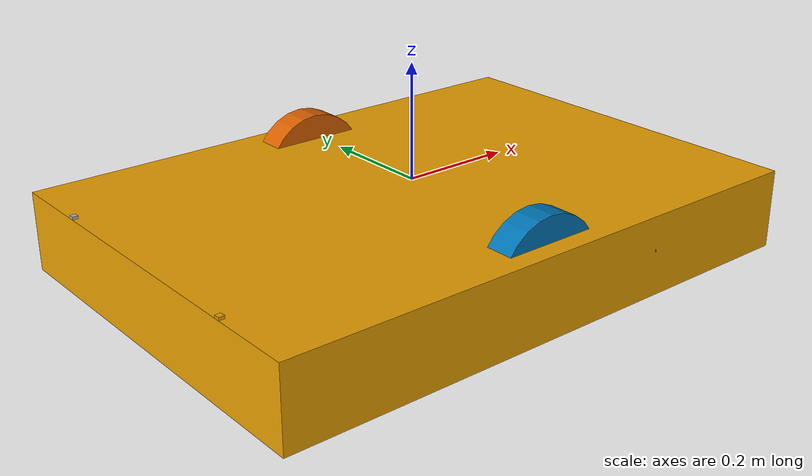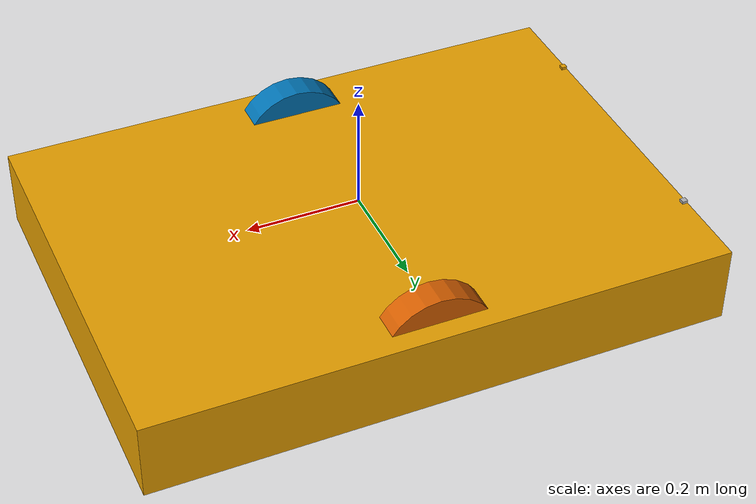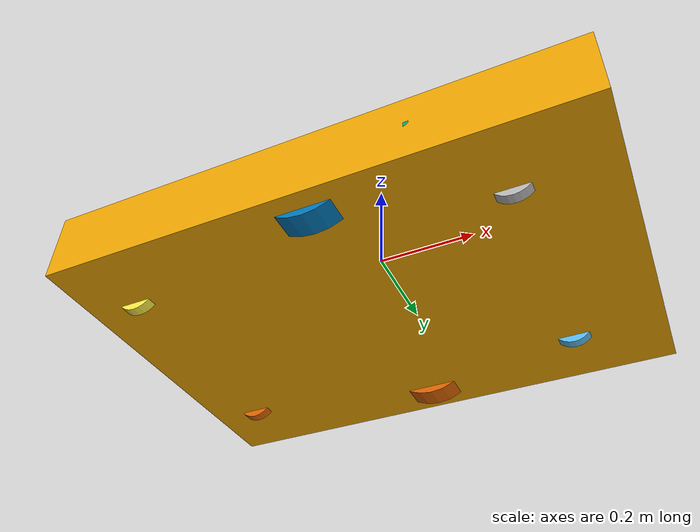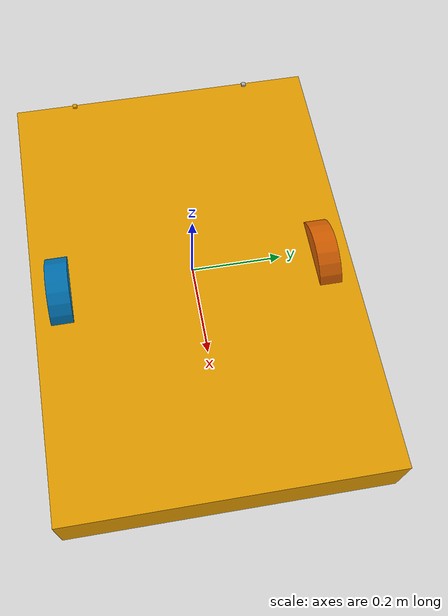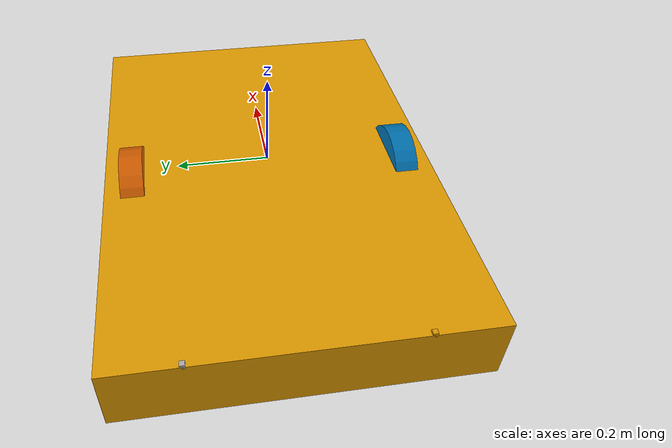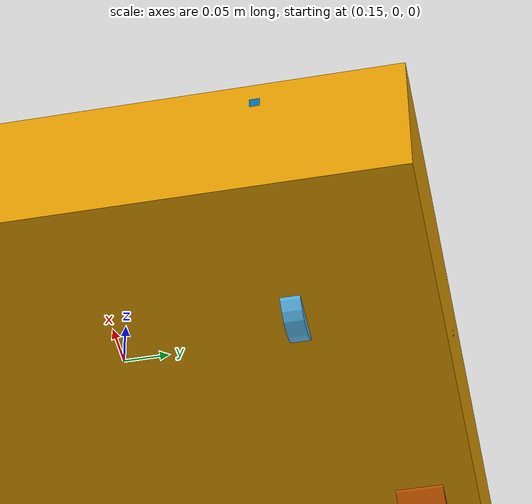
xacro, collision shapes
<?xml version="1.0"?>
<robot name="agvota" xmlns:xacro="http://ros.org/wiki/xacro">

	<xacro:arg name="robot_namespace" default="$(optenv ROBOT_NAMESPACE /)" />
	<xacro:property name="robot_namespace" value="$(arg robot_namespace)" />

	<xacro:include filename="$(find arena-simulation-setup)/robot/agvota/urdf/agv_base.urdf.xacro"/>
	<xacro:include filename="$(find arena-simulation-setup)/robot/agvota/urdf/inertia_tensors.urdf.xacro"/>
	<xacro:include filename="$(find arena-simulation-setup)/robot/agvota/urdf/agv_wheel.urdf.xacro"/>
	<xacro:include filename="$(find arena-simulation-setup)/robot/agvota/urdf/agv_plugin.urdf.xacro"/>
	<xacro:include filename="$(find arena-simulation-setup)/robot/agvota/urdf/agv_caster.urdf.xacro"/>
	<xacro:include filename="$(find arena-simulation-setup)/robot/agvota/urdf/agv_ir.urdf.xacro"/>

	<xacro:agv_base />
	<xacro:agv_ir base_link="base_link" link_name="ir1" xyz_ir="0.505 0.215 -0.03" rpy_ir="0 0 0" />
	<xacro:agv_ir base_link="base_link" link_name="ir2" xyz_ir="0.20 0.355 -0.068" rpy_ir="0 0 1.570796" />
	<xacro:agv_ir base_link="base_link" link_name="ir3" xyz_ir="-0.20 0.355 -0.068" rpy_ir="0 0 1.570796" />
	<xacro:agv_ir base_link="base_link" link_name="ir4" xyz_ir="-0.505 0.215 -0.005" rpy_ir="0 0 3.14159" />
	<xacro:agv_ir base_link="base_link" link_name="ir5" xyz_ir="-0.505 -0.215 -0.005" rpy_ir="0 0 3.14159" />
	<xacro:agv_ir base_link="base_link" link_name="ir6" xyz_ir="-0.20 -0.355 -0.068" rpy_ir="0 0 -1.570796" />
	<xacro:agv_ir base_link="base_link" link_name="ir7" xyz_ir="0.20 -0.355 -0.068" rpy_ir="0 0 -1.570796" />
	<xacro:agv_ir base_link="base_link" link_name="ir8" xyz_ir="0.503 -0.215 -0.03" rpy_ir="0 0 0" />
	<xacro:agv_wheel xyz_hub="0 -0.30 -0.06" rpy_hub="0 0 0" side="left"/>
	<xacro:agv_wheel xyz_hub="0 0.30 -0.06" rpy_hub="0 0 0" side="right"/>

	<xacro:agv_swivel xyz_caster="0.37 -0.22 -0.048" rpy_caster="0 0 0" side="front_right"/>
	<xacro:agv_swivel xyz_caster="0.37 0.22 -0.048" rpy_caster="0 0 0" side="front_left"/>
	<xacro:agv_swivel xyz_caster="-0.37 -0.22 -0.048" rpy_caster="0 0 0" side="back_right"/>
	<xacro:agv_swivel xyz_caster="-0.37 0.22 -0.048" rpy_caster="0 0 0" side="back_left"/>

	<!-- Motor plugin -->
	<xacro:agv_diff_drive />

	<!-- Joints plugin -->
	<xacro:agv_joints_state_publisher />

	<!-- IMU Plugin-->
	<xacro:agv_imu />

</robot>

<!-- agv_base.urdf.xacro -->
<robot xmlns:xacro="http://ros.org/wiki/xacro">
  <xacro:macro name="agv_base" >

    <link name='base_link'>
      <origin xyz="0 0 0" rpy=" 0 0 0"/>

      <visual>
        <origin xyz="0 0 -0.1625" rpy=" 0 0 0"/>
        <geometry>
          <mesh filename="package://arena-simulation-setup/robot/agvota/meshes/OTAv07_meshes/OTA-v0.7.stl" scale="0.001 0.001 0.001"/>
        </geometry>
      </visual>

      <collision>
        <origin xyz="0 0 -0.075" rpy=" 0 0 0"/>
        <geometry>
          <box size="1.02 0.72 0.14"/>
        </geometry>
      </collision>

      <xacro:box_inertial x="1.02605" y="0.728"  z="0.3" mass="1.0" />
    </link>

    <gazebo reference="base_link">
      <material value="Gazebo/Orange"/>
    </gazebo>

    <!-- Laser -->
    <link name="scan_link">

      <visual>
        <origin xyz="0 0 0" rpy="1.570796 0 -1.570796"/>
        <geometry>
          <mesh filename="package://arena-simulation-setup/robot/agvota/meshes/OTAv07_meshes/S30B-XXXXXX.stl" scale="0.001 0.001 0.001"/>
        </geometry>
      </visual>

    </link>

    <joint name="scan_joint" type="fixed">
      <origin xyz="0.42 0.0 0.01" rpy="0 0 0"/>
      <parent link="base_link"/>
      <child link="scan_link"/>
      <axis xyz="0 0 1"/>
    </joint>

    <gazebo reference="scan_link">
      <material value="Gazebo/DarkGray"/>
      <sensor type="ray" name="laser_scan">
      	<tf_prefix></tf_prefix>
        <pose>0 0 0 0 0 0</pose>
        <visualize>false</visualize>
        <update_rate>40</update_rate>
        <ray>
          <scan>
            <horizontal>
              <samples>720</samples>
              <resolution>1</resolution>
              <min_angle>-1.570796</min_angle>
              <max_angle>1.570796</max_angle>
            </horizontal>
          </scan>
          <range>
            <min>0.10</min>
            <max>30.0</max>
            <resolution>0.03</resolution>
          </range>

          <noise>
            <type>gaussian</type>
            <mean>0.0</mean>
            <stddev>0.01</stddev>
          </noise>
        </ray>

        <plugin name="laser_scan_plugin" filename="libgazebo_ros_laser.so">
            <topicName>scan</topicName>
            <frameName>scan_link</frameName>
            <tf_prefix>/</tf_prefix>
        </plugin>
      </sensor>
    </gazebo>

    <!-- Zed Camera -->

    <link name="zed_camera">
      <visual>
          <origin xyz="0 0 0" rpy="0 0 0"/>
          <geometry>
            <mesh filename="package://arena-simulation-setup/robot/agvota/meshes/OTAv07_meshes/zed.stl" />
          </geometry>
          <material name="black">
            <color rgba="1 1 1 1"/>
          </material>
      </visual>

    </link>

    <joint name="zed_camera_joint" type="fixed">
      <parent link="base_link"/>
      <child link="zed_camera"/>
      <origin xyz="0.49 0 0.175" rpy="0 0 0" />
    </joint>

    <gazebo reference="zed_camera">
      <sensor type="camera" name="camera">
        <update_rate>30.0</update_rate>
        <camera name="head">
          <horizontal_fov>1.3962634</horizontal_fov>
          <image>
            <width>640</width>
            <height>480</height>
            <format>R8G8B8</format>
          </image>
          <clip>
            <near>0.02</near>
            <far>300</far>
          </clip>
          <noise>
            <type>gaussian</type>
            <!-- Noise is sampled independently per pixel on each frame.
                That pixel's noise value is added to each of its color
                channels, which at that point lie in the range [0,1]. -->
            <mean>0.0</mean>
            <stddev>0.007</stddev>
          </noise>
        </camera>

        <plugin name="camera_controller" filename="libgazebo_ros_camera.so">
          <alwaysOn>true</alwaysOn>
          <updateRate>0.0</updateRate>
          <cameraName>camera</cameraName>
          <imageTopicName>image_raw</imageTopicName>
          <cameraInfoTopicName>camera_info</cameraInfoTopicName>
          <frameName>zed_camera</frameName>
          <hackBaseline>0.07</hackBaseline>
          <distortionK1>0.0</distortionK1>
          <distortionK2>0.0</distortionK2>
          <distortionK3>0.0</distortionK3>
          <distortionT1>0.0</distortionT1>
          <distortionT2>0.0</distortionT2>
        </plugin>

      </sensor>
    </gazebo>

    <!-- IMU Link -->
    <link name="imu_link"/>

    <joint name="imu_joint" type="fixed">
      <parent link="base_link"/>
      <child link="imu_link"/>
      <origin xyz="0.0 0 0.068" rpy="0 0 0"/>
    </joint>

  </xacro:macro>
</robot>

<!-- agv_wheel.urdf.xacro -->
<robot xmlns:xacro="http://ros.org/wiki/xacro">
  <xacro:macro name="agv_wheel" params="xyz_hub rpy_hub side">

    <link name='wheel_${side}_link'>
      <visual>
        <origin xyz="0 0 0" rpy=" 0 0 1.570796"/>
        <geometry>
          <mesh filename="package://arena-simulation-setup/robot/agvota/meshes/OTAv07_meshes/AnaTeker.stl" scale="0.001 0.001 0.001"/>
        </geometry>
      </visual>

      <collision>
        <origin xyz="0 0 0" rpy="0 1.570796 1.570796"/>
        <geometry>
          <cylinder radius="0.1" length="0.05"/>
        </geometry>
      </collision>

      <xacro:cylinder_inertial radius="0.15" length="0.02" mass="0.1"/>
    </link>

    <joint name="wheel_${side}_base" type="continuous">
      <origin xyz="${xyz_hub}" rpy="${rpy_hub}"/>
      <parent link="base_link"/>
      <child link="wheel_${side}_link"/>
      <axis xyz="0 1 0"/>
    </joint>

    <gazebo reference="wheel_${side}_link">
      <material value="Gazebo/Green"/>
    </gazebo>

  </xacro:macro>
 </robot>

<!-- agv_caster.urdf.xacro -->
<robot xmlns:xacro="http://ros.org/wiki/xacro">
  <property name="M_PI" value="3.1415926535897931" />
  <xacro:macro name="agv_swivel" params="xyz_caster rpy_caster side">

    <link name='caster_${side}_link'>
      <visual>
        <origin xyz="0 0 0" rpy=" 0 0 0"/>
        <geometry>
          <mesh filename="package://arena-simulation-setup/robot/agvota/meshes/OTAv07_meshes/SarhosTeker.stl" scale="0.001 0.001 0.001"/>
        </geometry>
      </visual>

      <collision>
        <origin xyz="0 0 0" rpy="0 0 0"/>
        <geometry>
          <cylinder radius="0.005" length="0.07"/>
        </geometry>
      </collision>

      <xacro:cylinder_inertial radius="0.005" length="0.07" mass="0.1" />
    </link>

    <joint name="caster_${side}_joint" type="continuous">
      <origin xyz="${xyz_caster}" rpy="${rpy_caster}"/>
      <axis xyz="0 0 1"/>
      <anchor xyz="0 0 0"/>
      <limit effort="0" velocity="0" k_velocity="0"/>
      <joint_properties damping="0.0" friction="0.0"/>
      <parent link="base_link"/>
      <child link="caster_${side}_link"/>
    </joint>

    <gazebo reference="caster_${side}_link">
      <material value="Gazebo/Gray"/>
    </gazebo>

    <link name='caster_wheel_${side}_link'>
      <collision>
        <origin xyz="0 0 0" rpy="0 1.570796 1.570796"/>
        <geometry>
          <cylinder radius="0.042" length="0.02"/>
        </geometry>
      </collision>

      <xacro:cylinder_inertial radius="0.042" length="0.02" mass="0.1" />
    </link>

    <joint name="caster_${side}_wheel_joint" type="continuous">
      <axis xyz="0 1 0"/>
      <origin xyz="-0.04 0 -0.07" rpy="0 0 0"/>
      <parent link="caster_${side}_link"/>
      <child link="caster_wheel_${side}_link"/>
    </joint>

  </xacro:macro>
</robot>

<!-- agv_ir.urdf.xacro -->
<robot xmlns:xacro="http://ros.org/wiki/xacro">
  <xacro:macro name="agv_ir" params="base_link link_name xyz_ir rpy_ir">

	<link name="${link_name}_link">
		<inertial>
			<origin xyz="0 0 0" rpy="0 0 0"/>
			<mass value="0.001"/>
			<inertia ixx="0.001666" ixy="0" ixz="0" iyy="0.001666" iyz="0" izz="0.001666"/>
		</inertial>

		<visual>
			<origin xyz="0 0 0" rpy="0 0 0"/>
			<geometry>
				<mesh filename="package://arena-simulation-setup/robot/agvota/meshes/OTAv07_meshes/FotoelektrikSensor.stl" scale="0.0015 0.0015 0.0015"/>
			</geometry>
		</visual>

		<collision>
			<origin xyz="0 0 0" rpy="0 0 0"/>
			<geometry>
				<box size="0.01 0.01 0.01" />
			</geometry>
		</collision>
	</link>

	<joint name="${link_name}_joint" type="fixed">
		<origin xyz="${xyz_ir}" rpy="${rpy_ir}"/>
		<parent link="${base_link}"/>
		<child link="${link_name}_link"/>
	</joint>

	<gazebo reference="${link_name}_link">
		<sensor type="ray" name="${link_name}">
			<pose>0 0 0 0 0 0</pose>
			<ray>
				<scan>
					<horizontal>
						<samples>320</samples>
						<resolution>1</resolution>
						<min_angle>-0.001</min_angle>
						<max_angle>0.001</max_angle>
					</horizontal>
				</scan>
				<range>
					<min>0.02</min>
					<max>5.0</max>
					<resolution>0.01</resolution>
				</range>
			</ray>

			<plugin name="gazebo_ros_range" filename="libgazebo_ros_range.so">
				<topicName>${link_name}</topicName>
				<frameName>${link_name}_link</frameName>
				<frameId>${link_name}_link</frameId>
				<radiation>ultrasound</radiation>
				<fov>0.7</fov>
				<gaussianNoise>0</gaussianNoise>
			</plugin>

			<always_on>1</always_on>
			<update_rate>4</update_rate>
			<visualize>false</visualize>
		</sensor>
    </gazebo>

  </xacro:macro>
</robot>
